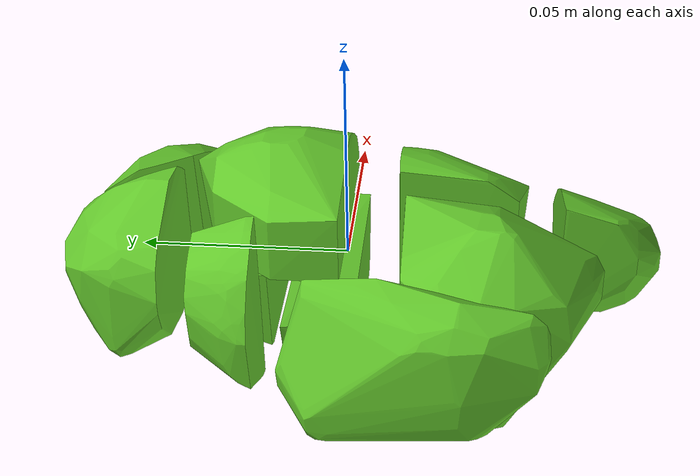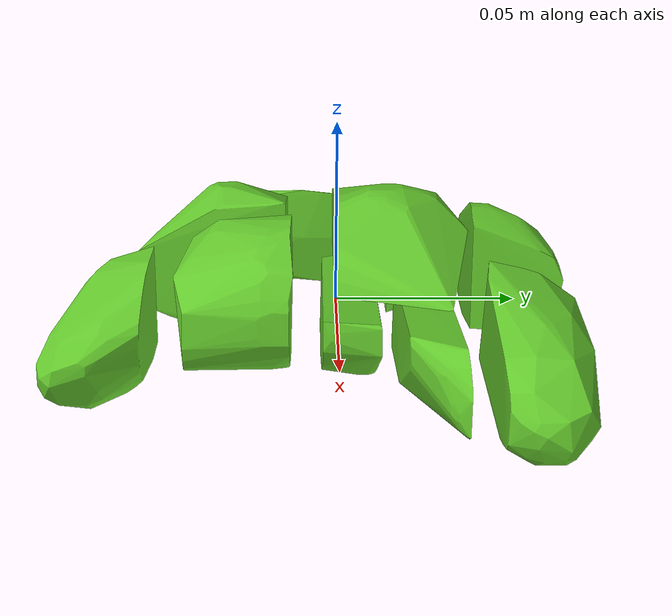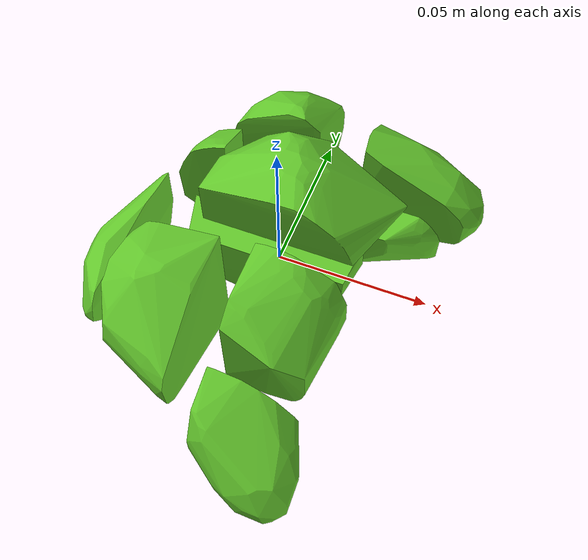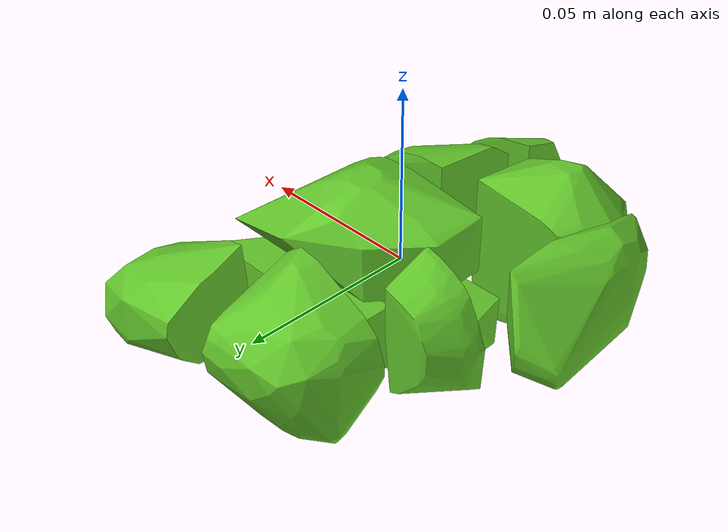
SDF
<?xml version='1.0' encoding='UTF-8'?>
<!-- This SDF was autogenerated by obj_to_drake_sdf.py -->
<sdf version="1.7">
  <model name="xbox">
    <link name="xbox">
      <inertial>
        <pose>0 0 0 0 0 0</pose>
        <mass>0.05</mass>
        <inertia>
          <ixx>8.3780245e-05</ixx>
          <iyy>4.5287181e-05</iyy>
          <izz>0.00010810507</izz>
          <ixy>-1.0810479e-05</ixy>
          <ixz>4.9729635e-06</ixz>
          <iyz>-1.4075579e-07</iyz>
        </inertia>
      </inertial>
      <visual name="convex_0">
        <pose>0 0 0 0 0 0</pose>
        <geometry>
          <mesh>
            <uri>xbox_convex_0.obj</uri>
          </mesh>
        </geometry>
        <material>
          <diffuse>0.39215686274509803 0.7843137254901961 0.17254901960784313 1</diffuse>
        </material>
      </visual>
      <collision name="convex_0_volume">
        <pose>0 0 0 0 0 0</pose>
        <geometry>
          <mesh>
            <uri>xbox_convex_0.obj</uri>
          </mesh>
        </geometry>
        <drake:proximity_properties xmlns:drake="uri:drake">
          <drake:compliant_hydroelastic/>
          <drake:hydroelastic_modulus> 3.0e7 </drake:hydroelastic_modulus>
          <drake:mesh_resolution_hint> 0.02 </drake:mesh_resolution_hint>
          <drake:hunt_crossley_dissipation>10</drake:hunt_crossley_dissipation>
          <drake:mu_dynamic>0.3</drake:mu_dynamic>
        </drake:proximity_properties>
      </collision>
      <visual name="convex_1">
        <pose>0 0 0 0 0 0</pose>
        <geometry>
          <mesh>
            <uri>xbox_convex_1.obj</uri>
          </mesh>
        </geometry>
        <material>
          <diffuse>0.39215686274509803 0.7843137254901961 0.17254901960784313 1</diffuse>
        </material>
      </visual>
      <collision name="convex_1_volume">
        <pose>0 0 0 0 0 0</pose>
        <geometry>
          <mesh>
            <uri>xbox_convex_1.obj</uri>
          </mesh>
        </geometry>
        <drake:proximity_properties xmlns:drake="uri:drake">
          <drake:compliant_hydroelastic/>
          <drake:hydroelastic_modulus> 3.0e7 </drake:hydroelastic_modulus>
          <drake:mesh_resolution_hint> 0.02 </drake:mesh_resolution_hint>
          <drake:hunt_crossley_dissipation>10</drake:hunt_crossley_dissipation>
          <drake:mu_dynamic>0.3</drake:mu_dynamic>
        </drake:proximity_properties>
      </collision>
      <visual name="convex_2">
        <pose>0 0 0 0 0 0</pose>
        <geometry>
          <mesh>
            <uri>xbox_convex_2.obj</uri>
          </mesh>
        </geometry>
        <material>
          <diffuse>0.39215686274509803 0.7843137254901961 0.17254901960784313 1</diffuse>
        </material>
      </visual>
      <collision name="convex_2_volume">
        <pose>0 0 0 0 0 0</pose>
        <geometry>
          <mesh>
            <uri>xbox_convex_2.obj</uri>
          </mesh>
        </geometry>
        <drake:proximity_properties xmlns:drake="uri:drake">
          <drake:compliant_hydroelastic/>
          <drake:hydroelastic_modulus> 3.0e7 </drake:hydroelastic_modulus>
          <drake:mesh_resolution_hint> 0.02 </drake:mesh_resolution_hint>
          <drake:hunt_crossley_dissipation>10</drake:hunt_crossley_dissipation>
          <drake:mu_dynamic>0.3</drake:mu_dynamic>
        </drake:proximity_properties>
      </collision>
      <visual name="convex_3">
        <pose>0 0 0 0 0 0</pose>
        <geometry>
          <mesh>
            <uri>xbox_convex_3.obj</uri>
          </mesh>
        </geometry>
        <material>
          <diffuse>0.39215686274509803 0.7843137254901961 0.17254901960784313 1</diffuse>
        </material>
      </visual>
      <collision name="convex_3_volume">
        <pose>0 0 0 0 0 0</pose>
        <geometry>
          <mesh>
            <uri>xbox_convex_3.obj</uri>
          </mesh>
        </geometry>
        <drake:proximity_properties xmlns:drake="uri:drake">
          <drake:compliant_hydroelastic/>
          <drake:hydroelastic_modulus> 3.0e7 </drake:hydroelastic_modulus>
          <drake:mesh_resolution_hint> 0.02 </drake:mesh_resolution_hint>
          <drake:hunt_crossley_dissipation>10</drake:hunt_crossley_dissipation>
          <drake:mu_dynamic>0.3</drake:mu_dynamic>
        </drake:proximity_properties>
      </collision>
      <visual name="convex_4">
        <pose>0 0 0 0 0 0</pose>
        <geometry>
          <mesh>
            <uri>xbox_convex_4.obj</uri>
          </mesh>
        </geometry>
        <material>
          <diffuse>0.39215686274509803 0.7843137254901961 0.17254901960784313 1</diffuse>
        </material>
      </visual>
      <collision name="convex_4_volume">
        <pose>0 0 0 0 0 0</pose>
        <geometry>
          <mesh>
            <uri>xbox_convex_4.obj</uri>
          </mesh>
        </geometry>
        <drake:proximity_properties xmlns:drake="uri:drake">
          <drake:compliant_hydroelastic/>
          <drake:hydroelastic_modulus> 3.0e7 </drake:hydroelastic_modulus>
          <drake:mesh_resolution_hint> 0.02 </drake:mesh_resolution_hint>
          <drake:hunt_crossley_dissipation>10</drake:hunt_crossley_dissipation>
          <drake:mu_dynamic>0.3</drake:mu_dynamic>
        </drake:proximity_properties>
      </collision>
      <visual name="convex_5">
        <pose>0 0 0 0 0 0</pose>
        <geometry>
          <mesh>
            <uri>xbox_convex_5.obj</uri>
          </mesh>
        </geometry>
        <material>
          <diffuse>0.39215686274509803 0.7843137254901961 0.17254901960784313 1</diffuse>
        </material>
      </visual>
      <collision name="convex_5_volume">
        <pose>0 0 0 0 0 0</pose>
        <geometry>
          <mesh>
            <uri>xbox_convex_5.obj</uri>
          </mesh>
        </geometry>
        <drake:proximity_properties xmlns:drake="uri:drake">
          <drake:compliant_hydroelastic/>
          <drake:hydroelastic_modulus> 3.0e7 </drake:hydroelastic_modulus>
          <drake:mesh_resolution_hint> 0.02 </drake:mesh_resolution_hint>
          <drake:hunt_crossley_dissipation>10</drake:hunt_crossley_dissipation>
          <drake:mu_dynamic>0.3</drake:mu_dynamic>
        </drake:proximity_properties>
      </collision>
      <visual name="convex_6">
        <pose>0 0 0 0 0 0</pose>
        <geometry>
          <mesh>
            <uri>xbox_convex_6.obj</uri>
          </mesh>
        </geometry>
        <material>
          <diffuse>0.39215686274509803 0.7843137254901961 0.17254901960784313 1</diffuse>
        </material>
      </visual>
      <collision name="convex_6_volume">
        <pose>0 0 0 0 0 0</pose>
        <geometry>
          <mesh>
            <uri>xbox_convex_6.obj</uri>
          </mesh>
        </geometry>
        <drake:proximity_properties xmlns:drake="uri:drake">
          <drake:compliant_hydroelastic/>
          <drake:hydroelastic_modulus> 3.0e7 </drake:hydroelastic_modulus>
          <drake:mesh_resolution_hint> 0.02 </drake:mesh_resolution_hint>
          <drake:hunt_crossley_dissipation>10</drake:hunt_crossley_dissipation>
          <drake:mu_dynamic>0.3</drake:mu_dynamic>
        </drake:proximity_properties>
      </collision>
      <visual name="convex_7">
        <pose>0 0 0 0 0 0</pose>
        <geometry>
          <mesh>
            <uri>xbox_convex_7.obj</uri>
          </mesh>
        </geometry>
        <material>
          <diffuse>0.39215686274509803 0.7843137254901961 0.17254901960784313 1</diffuse>
        </material>
      </visual>
      <collision name="convex_7_volume">
        <pose>0 0 0 0 0 0</pose>
        <geometry>
          <mesh>
            <uri>xbox_convex_7.obj</uri>
          </mesh>
        </geometry>
        <drake:proximity_properties xmlns:drake="uri:drake">
          <drake:compliant_hydroelastic/>
          <drake:hydroelastic_modulus> 3.0e7 </drake:hydroelastic_modulus>
          <drake:mesh_resolution_hint> 0.02 </drake:mesh_resolution_hint>
          <drake:hunt_crossley_dissipation>10</drake:hunt_crossley_dissipation>
          <drake:mu_dynamic>0.3</drake:mu_dynamic>
        </drake:proximity_properties>
      </collision>
      <visual name="convex_8">
        <pose>0 0 0 0 0 0</pose>
        <geometry>
          <mesh>
            <uri>xbox_convex_8.obj</uri>
          </mesh>
        </geometry>
        <material>
          <diffuse>0.39215686274509803 0.7843137254901961 0.17254901960784313 1</diffuse>
        </material>
      </visual>
      <collision name="convex_8_volume">
        <pose>0 0 0 0 0 0</pose>
        <geometry>
          <mesh>
            <uri>xbox_convex_8.obj</uri>
          </mesh>
        </geometry>
        <drake:proximity_properties xmlns:drake="uri:drake">
          <drake:compliant_hydroelastic/>
          <drake:hydroelastic_modulus> 3.0e7 </drake:hydroelastic_modulus>
          <drake:mesh_resolution_hint> 0.02 </drake:mesh_resolution_hint>
          <drake:hunt_crossley_dissipation>10</drake:hunt_crossley_dissipation>
          <drake:mu_dynamic>0.3</drake:mu_dynamic>
        </drake:proximity_properties>
      </collision>
      <visual name="convex_9">
        <pose>0 0 0 0 0 0</pose>
        <geometry>
          <mesh>
            <uri>xbox_convex_9.obj</uri>
          </mesh>
        </geometry>
        <material>
          <diffuse>0.39215686274509803 0.7843137254901961 0.17254901960784313 1</diffuse>
        </material>
      </visual>
      <collision name="convex_9_volume">
        <pose>0 0 0 0 0 0</pose>
        <geometry>
          <mesh>
            <uri>xbox_convex_9.obj</uri>
          </mesh>
        </geometry>
        <drake:proximity_properties xmlns:drake="uri:drake">
          <drake:compliant_hydroelastic/>
          <drake:hydroelastic_modulus> 3.0e7 </drake:hydroelastic_modulus>
          <drake:mesh_resolution_hint> 0.02 </drake:mesh_resolution_hint>
          <drake:hunt_crossley_dissipation>10</drake:hunt_crossley_dissipation>
          <drake:mu_dynamic>0.3</drake:mu_dynamic>
        </drake:proximity_properties>
      </collision>
    </link>
  </model>
</sdf>
